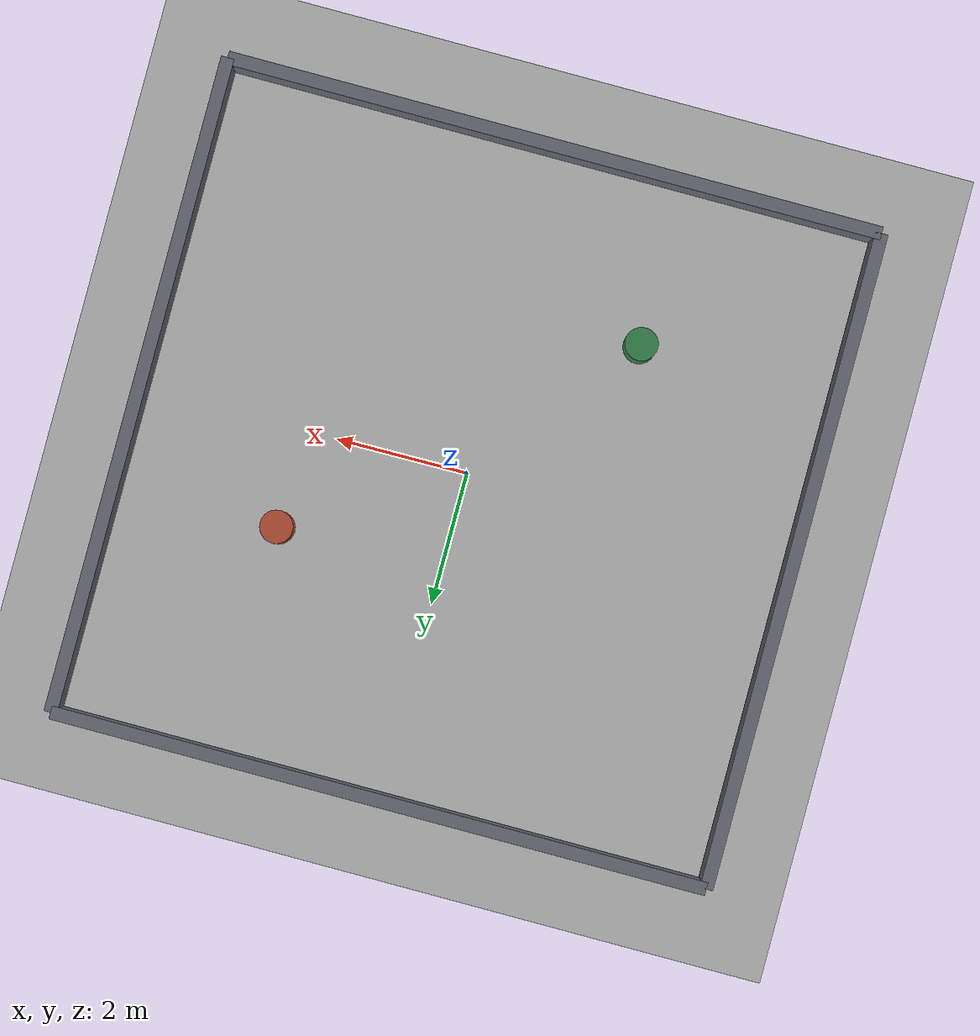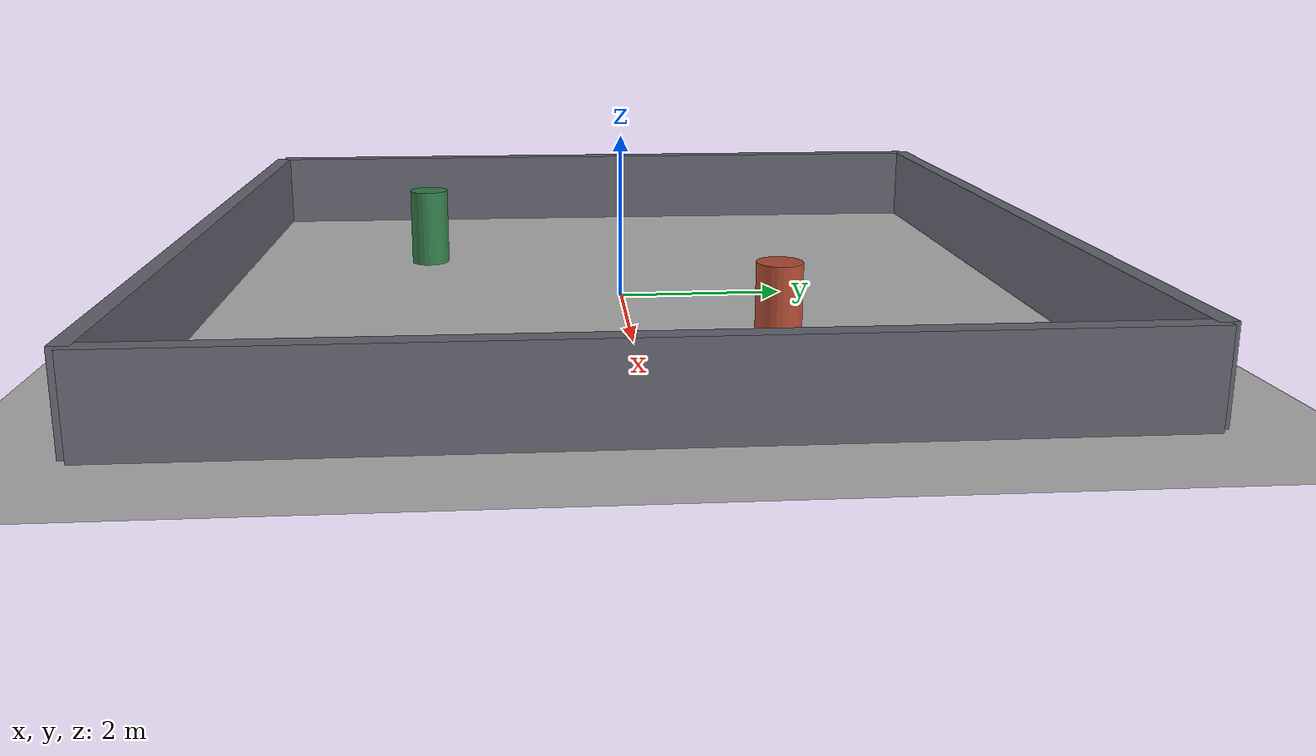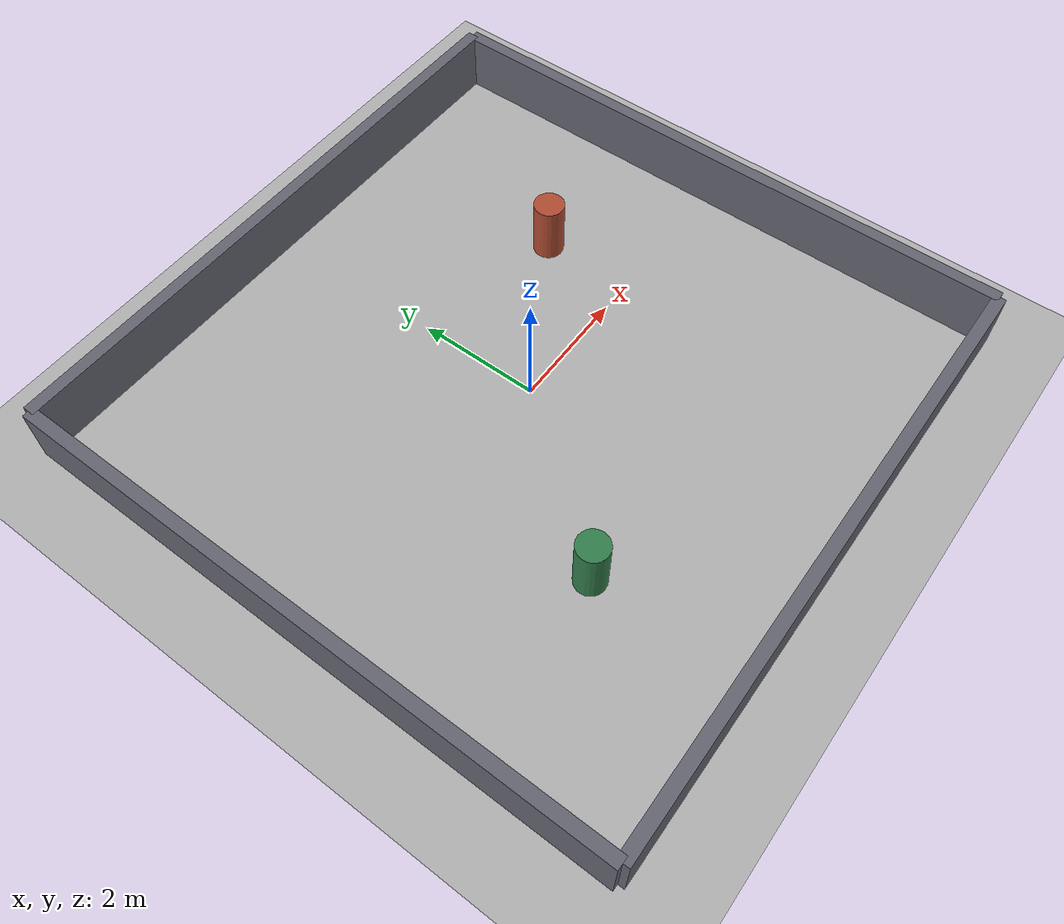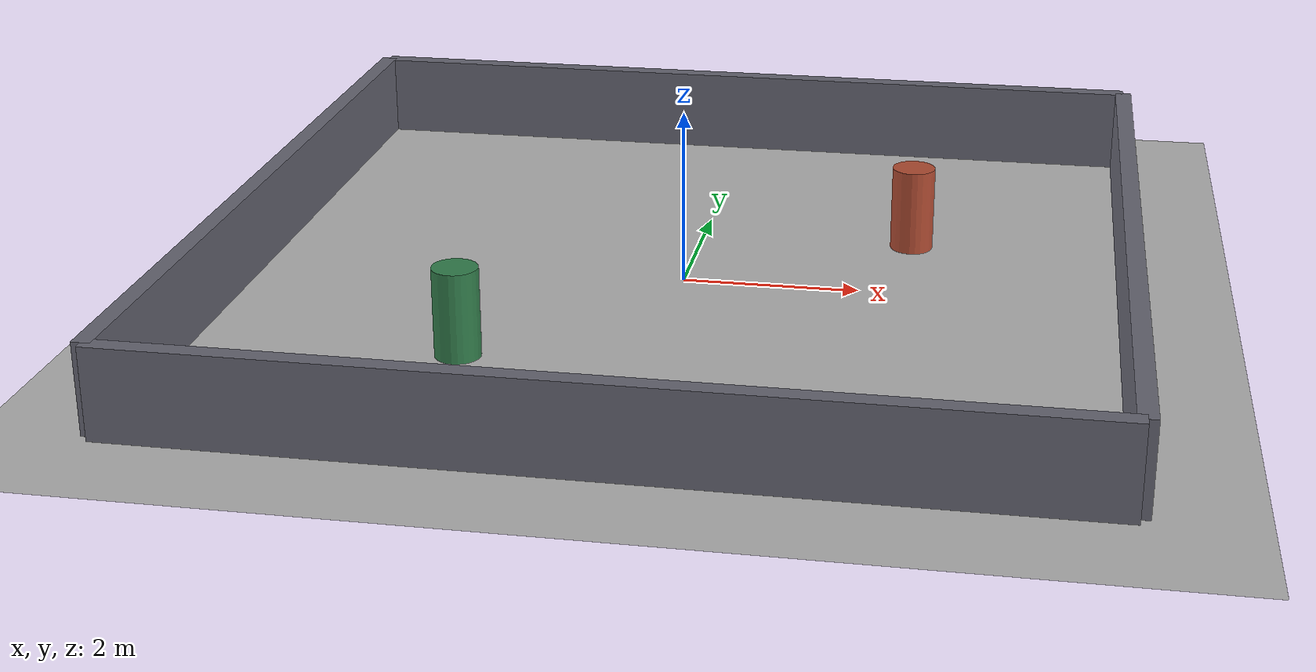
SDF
<?xml version="1.0" ?>
<!--
  A 10 x 10 m walled room with two pillars: something for the 2D LiDARs to
  actually return. Same mandatory plugin block as empty.sdf.
-->
<sdf version="1.8">
  <world name="box_room">
    <physics name="2ms" type="ignored">
      <max_step_size>0.002</max_step_size>
      <real_time_factor>1.0</real_time_factor>
    </physics>

    <plugin filename="libignition-gazebo-physics-system.so"
            name="ignition::gazebo::systems::Physics"/>
    <plugin filename="libignition-gazebo-sensors-system.so"
            name="ignition::gazebo::systems::Sensors">
      <render_engine>ogre2</render_engine>
    </plugin>
    <plugin filename="ignition-gazebo-imu-system"
            name="ignition::gazebo::systems::Imu"/>
    <plugin filename="libignition-gazebo-user-commands-system.so"
            name="ignition::gazebo::systems::UserCommands"/>
    <plugin filename="libignition-gazebo-scene-broadcaster-system.so"
            name="ignition::gazebo::systems::SceneBroadcaster"/>

    <light type="directional" name="sun">
      <cast_shadows>true</cast_shadows>
      <pose>0 0 10 0 0 0</pose>
      <diffuse>0.8 0.8 0.8 1</diffuse>
      <specular>0.2 0.2 0.2 1</specular>
      <direction>-0.5 0.1 -0.9</direction>
    </light>

    <model name="ground_plane">
      <static>true</static>
      <link name="link">
        <collision name="collision">
          <geometry><plane><normal>0 0 1</normal><size>100 100</size></plane></geometry>
        </collision>
        <visual name="visual">
          <geometry><plane><normal>0 0 1</normal><size>100 100</size></plane></geometry>
          <material><ambient>0.7 0.7 0.7 1</ambient><diffuse>0.7 0.7 0.7 1</diffuse></material>
        </visual>
      </link>
    </model>

    <!-- Four walls of a 10 x 10 room, 1 m tall, 0.2 m thick -->
    <model name="wall_north">
      <static>true</static><pose>5 0 0.5 0 0 0</pose>
      <link name="link">
        <collision name="c"><geometry><box><size>0.2 10 1</size></box></geometry></collision>
        <visual name="v"><geometry><box><size>0.2 10 1</size></box></geometry>
          <material><ambient>0.4 0.4 0.45 1</ambient><diffuse>0.4 0.4 0.45 1</diffuse></material>
        </visual>
      </link>
    </model>
    <model name="wall_south">
      <static>true</static><pose>-5 0 0.5 0 0 0</pose>
      <link name="link">
        <collision name="c"><geometry><box><size>0.2 10 1</size></box></geometry></collision>
        <visual name="v"><geometry><box><size>0.2 10 1</size></box></geometry>
          <material><ambient>0.4 0.4 0.45 1</ambient><diffuse>0.4 0.4 0.45 1</diffuse></material>
        </visual>
      </link>
    </model>
    <model name="wall_east">
      <static>true</static><pose>0 5 0.5 0 0 0</pose>
      <link name="link">
        <collision name="c"><geometry><box><size>10 0.2 1</size></box></geometry></collision>
        <visual name="v"><geometry><box><size>10 0.2 1</size></box></geometry>
          <material><ambient>0.4 0.4 0.45 1</ambient><diffuse>0.4 0.4 0.45 1</diffuse></material>
        </visual>
      </link>
    </model>
    <model name="wall_west">
      <static>true</static><pose>0 -5 0.5 0 0 0</pose>
      <link name="link">
        <collision name="c"><geometry><box><size>10 0.2 1</size></box></geometry></collision>
        <visual name="v"><geometry><box><size>10 0.2 1</size></box></geometry>
          <material><ambient>0.4 0.4 0.45 1</ambient><diffuse>0.4 0.4 0.45 1</diffuse></material>
        </visual>
      </link>
    </model>

    <!-- Two pillars, off-centre so scans are asymmetric and easy to read -->
    <model name="pillar_a">
      <static>true</static><pose>2.5 1.5 0.5 0 0 0</pose>
      <link name="link">
        <collision name="c"><geometry><cylinder><radius>0.25</radius><length>1</length></cylinder></geometry></collision>
        <visual name="v"><geometry><cylinder><radius>0.25</radius><length>1</length></cylinder></geometry>
          <material><ambient>0.7 0.3 0.2 1</ambient><diffuse>0.7 0.3 0.2 1</diffuse></material>
        </visual>
      </link>
    </model>
    <model name="pillar_b">
      <static>true</static><pose>-2.0 -2.5 0.5 0 0 0</pose>
      <link name="link">
        <collision name="c"><geometry><cylinder><radius>0.25</radius><length>1</length></cylinder></geometry></collision>
        <visual name="v"><geometry><cylinder><radius>0.25</radius><length>1</length></cylinder></geometry>
          <material><ambient>0.2 0.5 0.3 1</ambient><diffuse>0.2 0.5 0.3 1</diffuse></material>
        </visual>
      </link>
    </model>
  </world>
</sdf>
